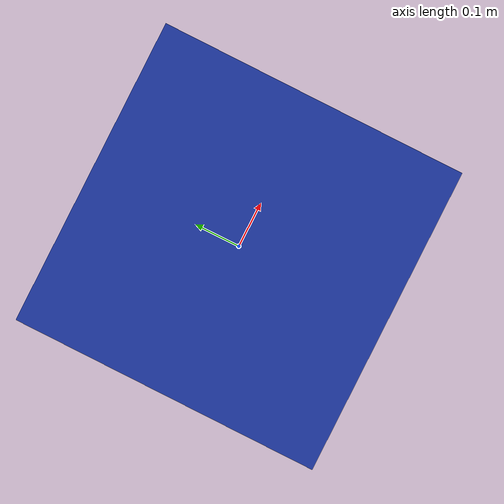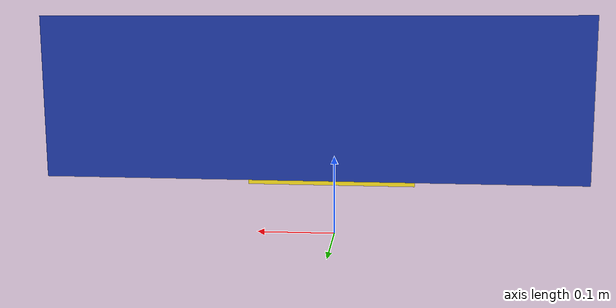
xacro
<?xml version="1.0"?>
<robot xmlns:xacro="http://www.ros.org/wiki/xacro" name="rescueswarm_drone">

  <xacro:arg name="drone_name" default="drone_1"/>

  <xacro:property name="name" value="$(arg drone_name)"/>
  <xacro:property name="base_mass" value="2.0"/>

  <link name="${name}_base_footprint"/>

  <joint name="${name}_base_joint" type="fixed">
    <parent link="${name}_base_footprint"/>
    <child link="${name}_base_link"/>
    <origin xyz="0 0 0.2" rpy="0 0 0"/>
  </joint>

  <link name="${name}_base_link">
    <inertial>
      <mass value="${base_mass}"/>
      <origin xyz="0 0 0" rpy="0 0 0"/>
      <inertia ixx="0.04" ixy="0.0" ixz="0.0" iyy="0.04" iyz="0.0" izz="0.07"/>
    </inertial>
    <visual>
      <geometry>
        <box size="0.5 0.5 0.15"/>
      </geometry>
      <material name="dark_blue">
        <color rgba="0.1 0.2 0.6 1.0"/>
      </material>
    </visual>
    <collision>
      <geometry>
        <box size="0.5 0.5 0.15"/>
      </geometry>
    </collision>
  </link>

  <!-- Payload Attachment Box (20cm x 10cm x 5cm, 200g) -->
  <link name="${name}_payload_link">
    <inertial>
      <mass value="0.2"/>
      <origin xyz="0 0 0" rpy="0 0 0"/>
      <inertia ixx="0.0002" ixy="0" ixz="0" iyy="0.0007" iyz="0" izz="0.0008"/>
    </inertial>
    <visual>
      <geometry>
        <box size="0.20 0.10 0.05"/>
      </geometry>
      <material name="yellow">
        <color rgba="0.9 0.8 0.1 1.0"/>
      </material>
    </visual>
    <collision>
      <geometry>
        <box size="0.20 0.10 0.05"/>
      </geometry>
    </collision>
  </link>

  <joint name="${name}_payload_joint" type="fixed">
    <parent link="${name}_base_link"/>
    <child link="${name}_payload_link"/>
    <origin xyz="0 0 -0.1" rpy="0 0 0"/>
  </joint>

  <!-- Downward Camera -->
  <link name="${name}_downward_camera_link">
    <visual>
      <geometry>
        <cylinder radius="0.02" length="0.03"/>
      </geometry>
      <material name="green">
        <color rgba="0.1 0.7 0.2 1.0"/>
      </material>
    </visual>
  </link>

  <joint name="${name}_downward_camera_joint" type="fixed">
    <parent link="${name}_base_link"/>
    <child link="${name}_downward_camera_link"/>
    <origin xyz="0.1 0 -0.08" rpy="0 1.5707963 0"/>
  </joint>

  <link name="${name}_imu_link"/>
  <joint name="${name}_imu_joint" type="fixed">
    <parent link="${name}_base_link"/>
    <child link="${name}_imu_link"/>
    <origin xyz="0 0 0" rpy="0 0 0"/>
  </joint>

  <!-- Gazebo Sensors -->
  <gazebo reference="${name}_downward_camera_link">
    <sensor name="${name}_cam" type="camera">
      <update_rate>20</update_rate>
      <topic>/${name}/downward_camera/image_raw</topic>
      <gz_frame_id>${name}_downward_camera_link</gz_frame_id>
      <camera>
        <horizontal_fov>1.5707963</horizontal_fov>
        <image>
          <width>640</width>
          <height>480</height>
          <format>R8G8B8</format>
        </image>
        <clip>
          <near>0.1</near>
          <far>100.0</far>
        </clip>
      </camera>
      <always_on>1</always_on>
      <visualize>true</visualize>
    </sensor>
  </gazebo>

  <gazebo reference="${name}_imu_link">
    <sensor name="${name}_imu" type="imu">
      <update_rate>100</update_rate>
      <topic>/${name}/imu</topic>
      <gz_frame_id>${name}_imu_link</gz_frame_id>
      <always_on>1</always_on>
    </sensor>
  </gazebo>

  <gazebo reference="${name}_base_link">
    <sensor name="${name}_navsat" type="navsat">
      <update_rate>10</update_rate>
      <topic>/${name}/navsat</topic>
      <always_on>1</always_on>
    </sensor>
  </gazebo>

  <gazebo>
    <plugin
      filename="gz-sim-multicopter-control-system"
      name="gz::sim::systems::MulticopterVelocityControl">
      <robotNamespace>${name}</robotNamespace>
      <commandSubTopic>cmd_vel</commandSubTopic>
      <enableSubTopic>enable</enableSubTopic>
      <comLinkName>${name}_base_link</comLinkName>
      <velocityGain>2.7 2.7 2.7</velocityGain>
      <attitudeGain>2.0 2.0 2.0</attitudeGain>
      <angularRateGain>0.4 0.4 0.4</angularRateGain>
      <maximumLinearVelocity>5.0 5.0 5.0</maximumLinearVelocity>
      <maximumAngularVelocity>3.0 3.0 3.0</maximumAngularVelocity>
    </plugin>
  </gazebo>

</robot>
